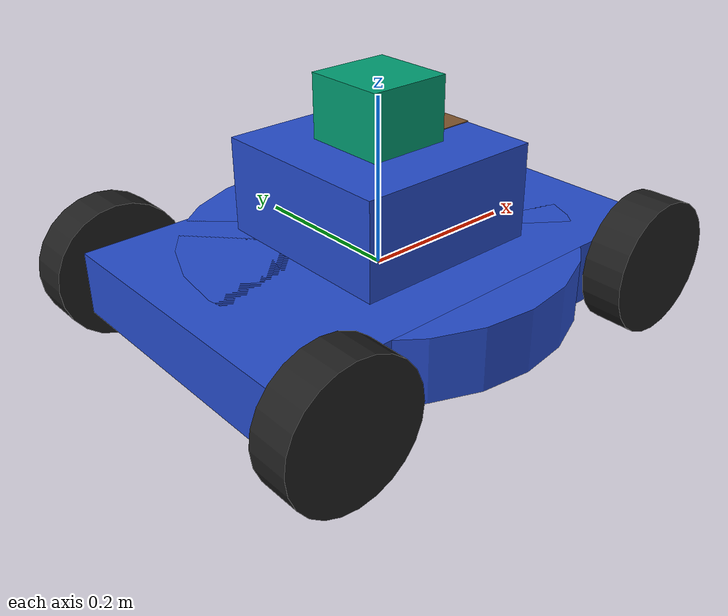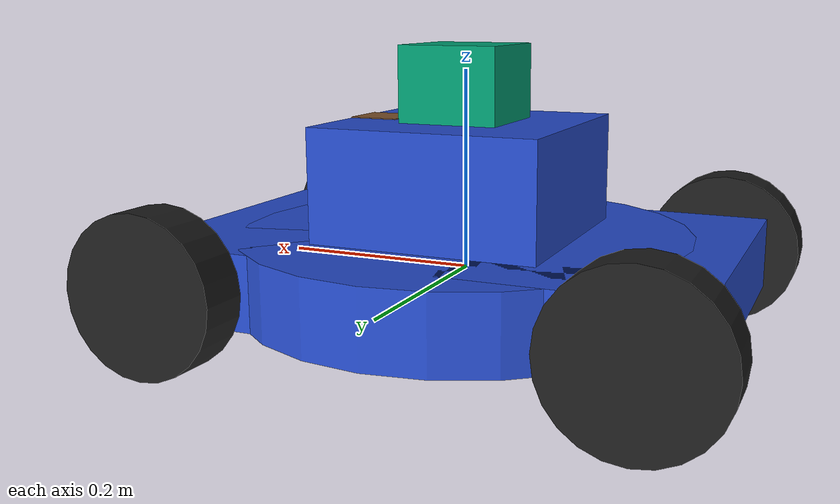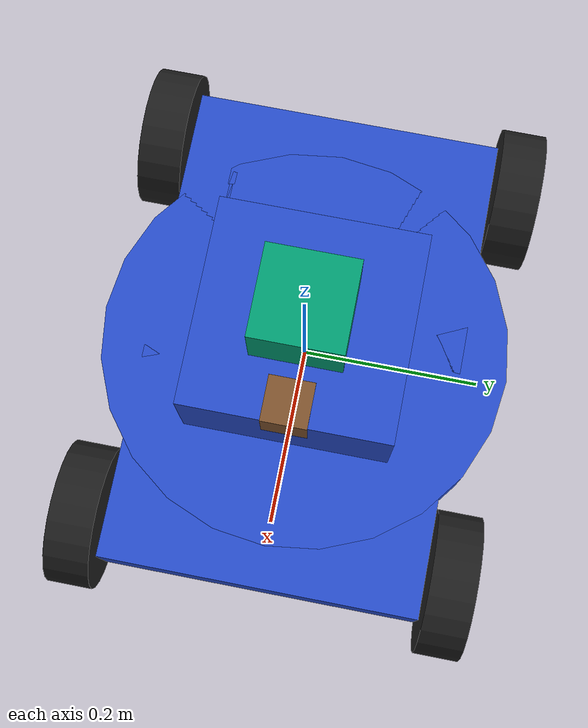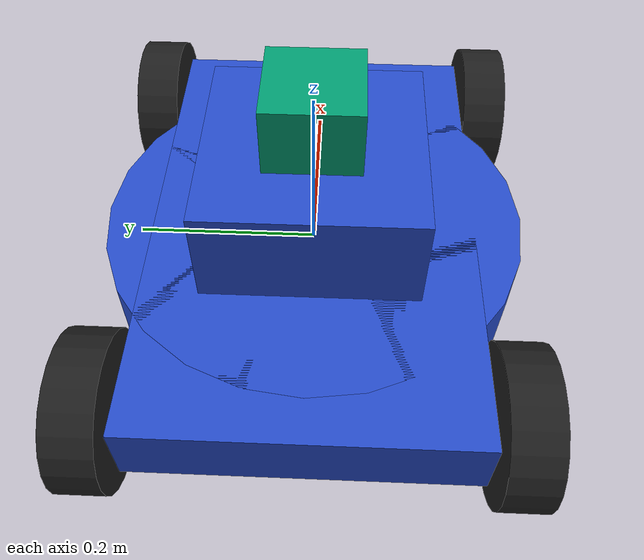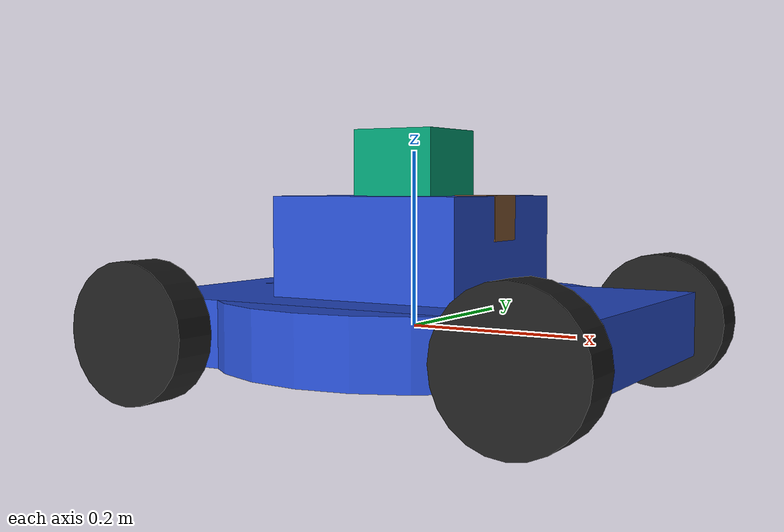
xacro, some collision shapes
<?xml version='1.0'?>

<robot name="skid_robot" xmlns:xacro="http://www.ros.org/wiki/xacro">

  <xacro:include filename="$(find skid_description)/urdf/skid_sensors.xacro" />

  <xacro:include filename="$(find skid_description)/urdf/skid_robot.gazebo" />
  <xacro:include filename="$(find skid_description)/urdf/materials.xacro" />

  <!-- Scale the robot size to fit the environment -->
  <xacro:property name="scale" value="1" />

  <!-- Length along X-axis, Width along Y-axis, Height along Z-axis -->
  <xacro:property name="mower_width" value="${scale * 0.46}" />
  <xacro:property name="mower_length" value="${scale * 0.46}" />
  <xacro:property name="mower_height" value="${scale * 0.3}" />
  <xacro:property name="mower_mass" value="${scale * 10}" />

  <xacro:property name="base_x_offset" value="0" />

  <!-- inertia = 1/12*m(h^2+d^2) -->
  <xacro:property name="height_2" value="${mower_height * mower_height}" />
  <xacro:property name="width_2" value="${mower_width * mower_width}" />
  <xacro:property name="length_2" value="${mower_length * mower_length}" />
  <xacro:property name="mower_inertia_xx" value="${mower_mass/12.0 * (height_2 + width_2)}" />
  <xacro:property name="mower_inertia_yy" value="${mower_mass/12.0 * (height_2 + length_2)}" />
  <xacro:property name="mower_inertia_zz" value="${mower_mass/12.0 * (width_2 + length_2)}" />
  <xacro:property name="mower_i_x_pos" value="${base_x_offset}" />
  <xacro:property name="mower_i_z_pos" value="${mower_height/3.0}" />

  <xacro:property name="mower_frame_width" value="${mower_width - 2.1 * wheel_length}" />
  <xacro:property name="mower_frame_length" value="${mower_length*1.2}" />
  <xacro:property name="mower_frame_height" value="${mower_height/4.0}" />

  <xacro:property name="hardware_width" value="${mower_width/2.0}" />
  <xacro:property name="hardware_length" value="${mower_length/2.0}" />
  <xacro:property name="hardware_height" value="${mower_height/2.0}" />
  <xacro:property name="hardware_z_offset" value="${hardware_height/2.0}" />

  <xacro:property name="wheel_length" value="${scale * 0.05}" />
  <xacro:property name="wheel_radius" value="${scale * 0.08}" />
  <xacro:property name="wheel_mass" value="${scale * 1}" />
  <xacro:property name="wheel_inertia" value="${scale * 1e-3}" />
  <xacro:property name="wheel_x_offset" value="${base_x_offset + mower_length/2.0}" />
  <xacro:property name="wheel_y_offset" value="${mower_width/2.0 - wheel_length/2.0}" />

  <xacro:property name="wheel_kp" value="1000000.0" />
  <xacro:property name="wheel_kd" value="100.0" />
  <xacro:property name="wheel_mu1" value="1" />
  <xacro:property name="wheel_mu2" value="1" />
  <xacro:property name="wheel_slip1" value="0" />
  <xacro:property name="wheel_slip2" value="0" />

  <link name="robot_footprint"></link>

  <joint name="robot_footprint_joint" type="fixed">
    <origin xyz="0 0 0" rpy="0 0 0" />
    <parent link="robot_footprint" />
    <child link="chassis" />
  </joint>

  <link name='chassis'>
    <inertial>
      <mass value="${mower_mass}"/>
      <origin xyz="${mower_i_x_pos} 0 ${mower_i_z_pos}" rpy=" 0 0 0"/>
      <inertia
          ixx="${mower_inertia_xx}" ixy="0" ixz="0"
          iyy="${mower_inertia_yy}" iyz="0"
          izz="${mower_inertia_zz}" />
    </inertial>

    <collision>
      <origin xyz="${base_x_offset} 0 0" rpy=" 0 0 0"/>
      <geometry>
        <box size="${mower_frame_length} ${mower_frame_width} ${mower_frame_height}"/>
      </geometry>
    </collision>
    <visual>
      <origin xyz="${base_x_offset} 0 0" rpy=" 0 0 0"/>
      <geometry>
        <box size="${mower_frame_length} ${mower_frame_width} ${mower_frame_height}"/>
      </geometry>
      <material name="blue"/>
    </visual>

    <!-- blade frame -->
    <collision>
      <origin xyz="${base_x_offset} 0 0" rpy=" 0 0 0"/>
      <geometry>
        <cylinder radius="${mower_width/2.0}" length="${mower_frame_height}"/>
      </geometry>
    </collision>
    <visual>
      <origin xyz="${base_x_offset} 0 0" rpy=" 0 0 0"/>
      <geometry>
        <cylinder radius="${mower_width/2.0}" length="${mower_frame_height}"/>
      </geometry>
      <material name="blue"/>
    </visual>

    <!-- hardware frame -->
    <collision>
      <origin xyz="${base_x_offset} 0 ${hardware_z_offset}" rpy=" 0 0 0"/>
      <geometry>
        <box size="${hardware_length} ${hardware_width} ${hardware_height}"/>
      </geometry>
    </collision>
    <visual>
      <origin xyz="${base_x_offset} 0 ${hardware_z_offset}" rpy=" 0 0 0"/>
      <geometry>
        <box size="${hardware_length} ${hardware_width} ${hardware_height}"/>
      </geometry>
      <material name="blue"/>
    </visual>

  </link>

  <!-- left back wheel -->
  <joint type="continuous" name="left_back_wheel_hinge">
    <origin xyz="-${wheel_x_offset} ${wheel_y_offset} 0" rpy="0 0 0"/>
    <child link="left_back_wheel"/>
    <parent link="chassis"/>
    <axis xyz="0 1 0" rpy="0 0 0"/>
    <limit effort="10000" velocity="1000"/>
    <joint_properties damping="1.0" friction="1.0"/>
  </joint>

  <link name="left_back_wheel">
    <inertial>
      <mass value="${wheel_mass}"/>
      <origin xyz="0.0 0 0" rpy=" 0 1.5707 1.5707"/>
      <inertia
        ixx="${wheel_inertia}" ixy="0" ixz="0"
        iyy="${wheel_inertia}" iyz="0"
        izz="${wheel_inertia}" />
    </inertial>
    <collision name="left_back_wheel_collision">
      <origin xyz="0 0 0" rpy=" 0 1.5707 1.5707"/>
      <geometry>
        <cylinder length="${wheel_length}" radius="${wheel_radius}"/>
      </geometry>
      <surface>
        <friction>
          <fdir1>1 0 0</fdir1>
          <kp>${wheel_kp}</kp> <!-- kp and kd for rubber -->
          <kd>${wheel_kd}</kd>
          <mu>${wheel_mu1}</mu>
          <mu2>${wheel_mu2}</mu2>
          <slip1>${wheel_slip1}</slip1>
          <slip2>${wheel_slip2}</slip2>
        </friction>
      </surface>
    </collision>
    <visual name="left_back_wheel_visual">
      <origin xyz="0 0 0" rpy=" 0 1.5707 1.5707"/>
      <geometry>
        <cylinder length="${wheel_length}" radius="${wheel_radius}"/>
      </geometry>
      <material name="black"/>
    </visual>
  </link>

  <!-- right back wheel -->
  <joint type="continuous" name="right_back_wheel_hinge">
    <origin xyz="-${wheel_x_offset} -${wheel_y_offset} 0" rpy="0 0 0"/>
    <child link="right_back_wheel"/>
    <parent link="chassis"/>
    <axis xyz="0 1 0" rpy="0 0 0"/>
    <limit effort="10000" velocity="1000"/>
    <joint_properties damping="1.0" friction="1.0"/>
  </joint>

  <link name="right_back_wheel">
    <inertial>
      <mass value="${wheel_mass}"/>
      <origin xyz="0.0 0 0" rpy=" 0 1.5707 1.5707"/>
      <inertia
          ixx="${wheel_inertia}" ixy="0" ixz="0"
          iyy="${wheel_inertia}" iyz="0"
          izz="${wheel_inertia}" />
    </inertial>
    <collision name="right_back_wheel_collision">
      <origin xyz="0 0 0" rpy=" 0 1.5707 1.5707"/>
      <geometry>
        <cylinder length="${wheel_length}" radius="${wheel_radius}"/>
      </geometry>
      <surface>
        <friction>
          <fdir1>1 0 0</fdir1>
          <kp>${wheel_kp}</kp> <!-- kp and kd for rubber -->
          <kd>${wheel_kd}</kd>
          <mu>${wheel_mu1}</mu>
          <mu2>${wheel_mu2}</mu2>
          <slip1>${wheel_slip1}</slip1>
          <slip2>${wheel_slip2}</slip2>
        </friction>
      </surface>
    </collision>
    <visual name="right_back_wheel_visual">
      <origin xyz="0 0 0" rpy=" 0 1.5707 1.5707"/>
      <geometry>
        <cylinder length="${wheel_length}" radius="${wheel_radius}"/>
      </geometry>
      <material name="black"/>
    </visual>
  </link>

  <!-- left front wheel -->
  <joint type="continuous" name="left_front_wheel_hinge">
    <origin xyz="${wheel_x_offset} ${wheel_y_offset} 0" rpy="0 0 0"/>
    <child link="left_front_wheel"/>
    <parent link="chassis"/>
    <axis xyz="0 1 0" rpy="0 0 0"/>
    <limit effort="10000" velocity="1000"/>
    <joint_properties damping="1.0" friction="1.0"/>
  </joint>

  <link name="left_front_wheel">
    <inertial>
      <mass value="${wheel_mass}"/>
      <origin xyz="0.0 0 0" rpy=" 0 1.5707 1.5707"/>
      <inertia
        ixx="${wheel_inertia}" ixy="0" ixz="0"
        iyy="${wheel_inertia}" iyz="0"
        izz="${wheel_inertia}" />
    </inertial>
    <collision name="left_front_wheel_collision">
      <origin xyz="0 0 0" rpy=" 0 1.5707 1.5707"/>
      <geometry>
        <cylinder length="${wheel_length}" radius="${wheel_radius}"/>
      </geometry>
      <surface>
        <friction>
          <fdir1>1 0 0</fdir1>
          <kp>${wheel_kp}</kp> <!-- kp and kd for rubber -->
          <kd>${wheel_kd}</kd>
          <mu>${wheel_mu1}</mu>
          <mu2>${wheel_mu2}</mu2>
          <slip1>${wheel_slip1}</slip1>
          <slip2>${wheel_slip2}</slip2>
        </friction>
      </surface>
    </collision>
    <visual name="left_front_wheel_visual">
      <origin xyz="0 0 0" rpy=" 0 1.5707 1.5707"/>
      <geometry>
        <cylinder length="${wheel_length}" radius="${wheel_radius}"/>
      </geometry>
      <material name="black"/>
    </visual>
  </link>

  <!-- right front wheel -->
  <joint type="continuous" name="right_front_wheel_hinge">
    <origin xyz="${wheel_x_offset} -${wheel_y_offset} 0" rpy="0 0 0"/>
    <child link="right_front_wheel"/>
    <parent link="chassis"/>
    <axis xyz="0 1 0" rpy="0 0 0"/>
    <limit effort="10000" velocity="1000"/>
    <joint_properties damping="1.0" friction="1.0"/>
  </joint>

  <link name="right_front_wheel">
    <inertial>
      <mass value="${wheel_mass}"/>
      <origin xyz="0.0 0 0" rpy=" 0 1.5707 1.5707"/>
      <inertia
          ixx="${wheel_inertia}" ixy="0" ixz="0"
          iyy="${wheel_inertia}" iyz="0"
          izz="${wheel_inertia}" />
    </inertial>
    <collision name="right_front_wheel_collision">
      <origin xyz="0 0 0" rpy=" 0 1.5707 1.5707"/>
      <geometry>
        <cylinder length="${wheel_length}" radius="${wheel_radius}"/>
      </geometry>
      <surface>
        <friction>
          <fdir1>1 0 0</fdir1>
          <kp>${wheel_kp}</kp> <!-- kp and kd for rubber -->
          <kd>${wheel_kd}</kd>
          <mu>${wheel_mu1}</mu>
          <mu2>${wheel_mu2}</mu2>
          <slip1>${wheel_slip1}</slip1>
          <slip2>${wheel_slip2}</slip2>
        </friction>
      </surface>
    </collision>
    <visual name="right_front_wheel_visual">
      <origin xyz="0 0 0" rpy=" 0 1.5707 1.5707"/>
      <geometry>
        <cylinder length="${wheel_length}" radius="${wheel_radius}"/>
      </geometry>
      <material name="black"/>
    </visual>
  </link>

</robot>

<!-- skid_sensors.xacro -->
<robot name="skid_robot" xmlns:xacro="http://ros.org/wiki/xacro">

  <xacro:property name="base_x_offset" value="0" />
  <xacro:property name="laser_width" value="0.1" />
  <xacro:property name="laser_length" value="0.1" />
  <xacro:property name="laser_height" value="0.1" />

  <xacro:property name="scale" value="1" />

  <xacro:property name="mower_height" value="${scale * 0.3}" />
  <xacro:property name="mower_length" value="${scale * 0.46}" />

  <xacro:property name="hardware_length" value="${mower_length/2.0}" />
  <xacro:property name="hardware_height" value="${mower_height/2.0}" />

  <xacro:property name="laser_x_offset" value="${base_x_offset}" />
  <xacro:property name="laser_z_offset" value="${hardware_height + 0.025}" />

  <xacro:property name="camerra_width" value="0.05" />
  <xacro:property name="camerra_length" value="0.05" />
  <xacro:property name="camerra_height" value="0.05" />
  <xacro:property name="camerra_x_offset" value="${hardware_length/2.0 + base_x_offset - camerra_length/2.0 + 0.001}" />
  <xacro:property name="camerra_z_offset" value="${hardware_height - camerra_height/2.0 + 0.001}" />

  <!--Camera model -->
  <link name='camera'>
    <inertial>
      <mass value="0.1"/>
      <origin xyz="0 0 0" rpy=" 0 0 0"/>
      <inertia
          ixx="1e-6" ixy="0" ixz="0"
          iyy="1e-6" iyz="0"
          izz="1e-6"/>
    </inertial>
    <collision name='camera_collision'>
      <origin xyz="0 0 0" rpy=" 0 0 0"/>
      <geometry>
        <box size="${camerra_length} ${camerra_width} ${camerra_height}"/>
      </geometry>
    </collision>
    <visual name='camera_visual'>
      <origin xyz="0 0 0" rpy=" 0 0 0"/>
      <geometry>
        <box size="${camerra_length} ${camerra_width} ${camerra_height}"/>
      </geometry>
      <material name="brown"/>
    </visual>
  </link>

  <joint type="fixed" name="camera_joint">
    <origin xyz="${camerra_x_offset} 0 ${camerra_z_offset}" rpy="0 0 0"/>
    <child link="camera"/>
    <parent link="chassis"/>
    <axis xyz="0 1 0" rpy="0 0 0"/>
    <limit effort="10000" velocity="1000"/>
    <joint_properties damping="1.0" friction="1.0"/>
  </joint>

  <!-- IMU Link is the standard mounting position for the UM6 IMU.-->
  <!-- Can be modified with environment variables in /etc/ros/setup.bash -->
  <link name="imu_link">
    <collision>
      <origin xyz="0 0 0" rpy="0 0 0"/>
      <geometry>
    <box size="0.1 0.1 0.01"/>
      </geometry>
    </collision>
      <visual>
      <origin xyz="0 0 0" rpy="0 0 0"/>
      <geometry>
        <box size="0.1 0.1 0.01"/>
      </geometry>
      <material name="red"/>
      </visual>
    <inertial>
      <mass value="1e-5" />
      <origin xyz="0 0 0" rpy="0 0 0"/>
      <inertia ixx="1e-6" ixy="0" ixz="0" iyy="1e-6" iyz="0" izz="1e-6" />
    </inertial>
  </link>

  <joint name="imu_joint" type="fixed">
    <origin xyz="0 0 0" rpy="0 0 0" />
    <parent link="chassis" />
    <child link="imu_link" />
  </joint>

  <!-- hokuyo sensor-->
  <link name='hokuyo'>
    <pose>0 0 0 0 0 0</pose>
    <inertial>
      <mass value="0.1"/>
      <origin xyz="0 0 0" rpy=" 0 0 0"/>
      <inertia
          ixx="1e-6" ixy="0" ixz="0"
          iyy="1e-6" iyz="0"
          izz="1e-6" />
    </inertial>
    <collision name='hokuyo_collision'>
      <origin xyz="0 0 0" rpy=" 0 0 0"/>
      <geometry>
        <box size="${laser_length} ${laser_width} ${laser_height}"/>
      </geometry>
    </collision>
    <visual name='hokuyo_visual'>
      <origin xyz="0 0 0" rpy=" 0 0 0"/>
      <geometry>
        <mesh filename="package://skid_description/meshes/hokuyo.dae"/>
      </geometry>
    </visual>
  </link>

  <joint type="fixed" name="hokuyo_joint">
    <origin xyz="${laser_x_offset} 0 ${laser_z_offset}" rpy="0 0 0"/>
    <child link="hokuyo"/>
    <parent link="chassis"/>
    <axis xyz="0 1 0" rpy="0 0 0"/>
    <limit effort="10000" velocity="1000"/>
    <joint_properties damping="1.0" friction="1.0"/>
  </joint>

</robot>
